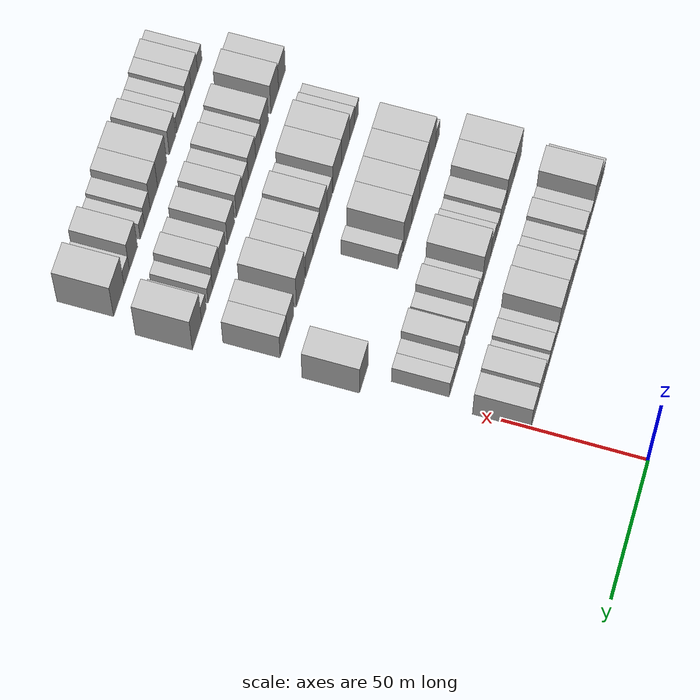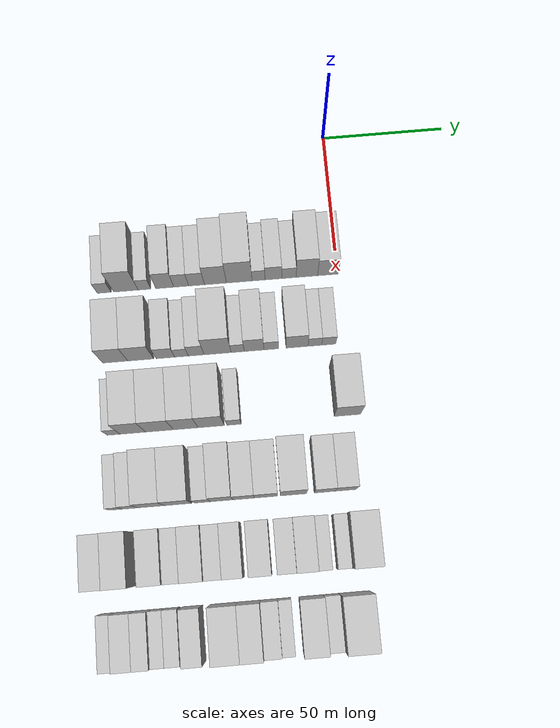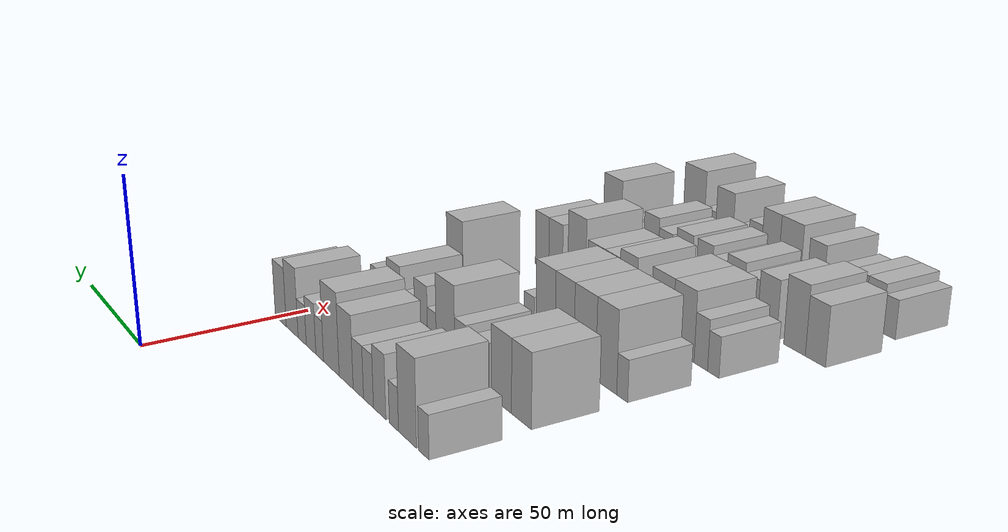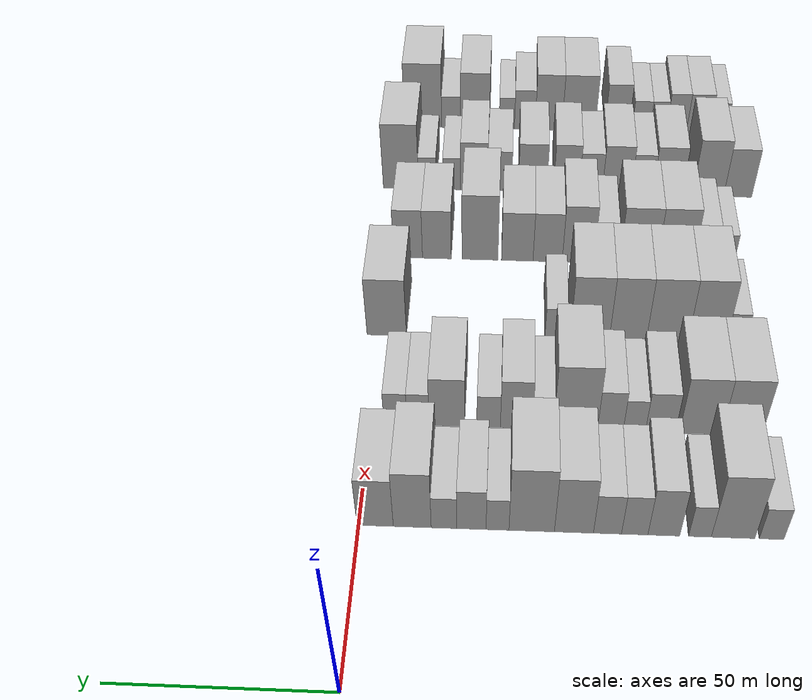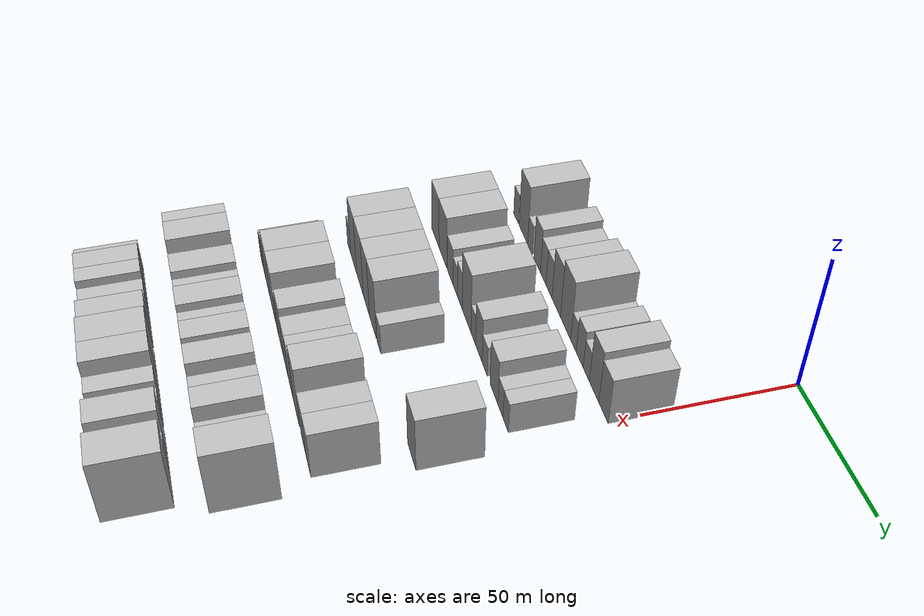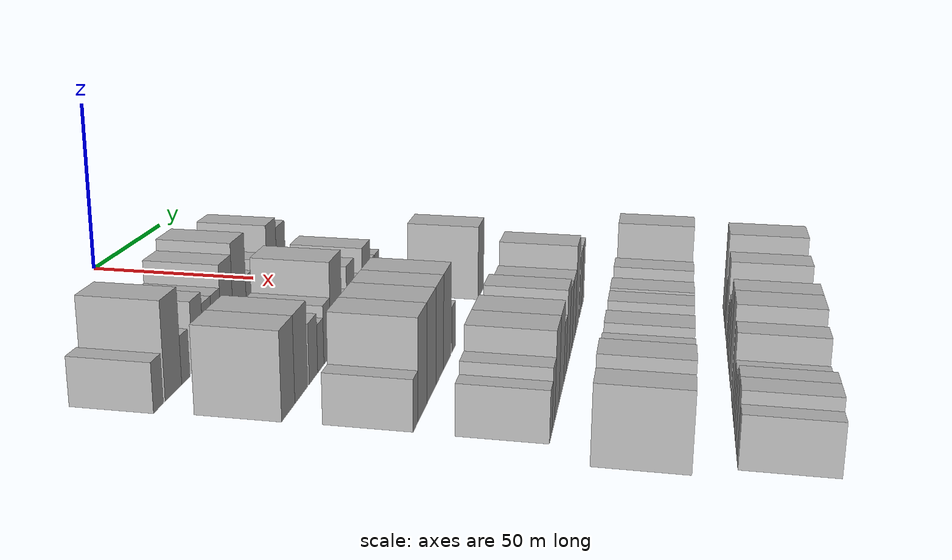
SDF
<sdf version="1.6">
 <world name="default">
  <model name="building_50">
   <static>1</static>
   <pose>50.0000 -94.3167 0 0.000000 0.000000 0.000000</pose>
   <link name="link">
    <pose>0 0 6.00 0 0 0</pose>
    <collision name="collision"><geometry><box><size>20.0000 5.5778 12.0000</size></box></geometry></collision>
    <visual name="visual">
     <cast_shadows>0</cast_shadows>
     <geometry><box><size>20.0000 5.5778 12.0000</size></box></geometry>
     <material>
      <script>
       <uri>model://HANNAS_wall/materials/scripts</uri>
       <uri>model://HANNAS_wall/materials/textures</uri>
       <name>vrc/HANNAS_wall</name>
      </script>
     </material>
    </visual>
   </link>
  </model>
  <model name="building_51">
   <static>1</static>
   <pose>50.0000 -85.5731 0 0.000000 0.000000 0.000000</pose>
   <link name="link">
    <pose>0 0 12.00 0 0 0</pose>
    <collision name="collision"><geometry><box><size>20.0000 9.9094 24.0000</size></box></geometry></collision>
    <visual name="visual">
     <cast_shadows>0</cast_shadows>
     <geometry><box><size>20.0000 9.9094 24.0000</size></box></geometry>
     <material>
      <script>
       <uri>model://HANNAS_wall/materials/scripts</uri>
       <uri>model://HANNAS_wall/materials/textures</uri>
       <name>vrc/HANNAS_wall</name>
      </script>
     </material>
    </visual>
   </link>
  </model>
  <model name="building_52">
   <static>1</static>
   <pose>50.0000 -78.0416 0 0.000000 0.000000 0.000000</pose>
   <link name="link">
    <pose>0 0 6.00 0 0 0</pose>
    <collision name="collision"><geometry><box><size>20.0000 5.1535 12.0000</size></box></geometry></collision>
    <visual name="visual">
     <cast_shadows>0</cast_shadows>
     <geometry><box><size>20.0000 5.1535 12.0000</size></box></geometry>
     <material>
      <script>
       <uri>model://HANNAS_wall/materials/scripts</uri>
       <uri>model://HANNAS_wall/materials/textures</uri>
       <name>vrc/HANNAS_wall</name>
      </script>
     </material>
    </visual>
   </link>
  </model>
  <model name="building_53">
   <static>1</static>
   <pose>50.0000 -69.8274 0 0.000000 0.000000 0.000000</pose>
   <link name="link">
    <pose>0 0 9.00 0 0 0</pose>
    <collision name="collision"><geometry><box><size>20.0000 7.2750 18.0000</size></box></geometry></collision>
    <visual name="visual">
     <cast_shadows>0</cast_shadows>
     <geometry><box><size>20.0000 7.2750 18.0000</size></box></geometry>
     <material>
      <script>
       <uri>model://HANNAS_wall/materials/scripts</uri>
       <uri>model://HANNAS_wall/materials/textures</uri>
       <name>vrc/HANNAS_wall</name>
      </script>
     </material>
    </visual>
   </link>
  </model>
  <model name="building_54">
   <static>1</static>
   <pose>50.0000 -63.1793 0 0.000000 0.000000 0.000000</pose>
   <link name="link">
    <pose>0 0 7.50 0 0 0</pose>
    <collision name="collision"><geometry><box><size>20.0000 6.0212 15.0000</size></box></geometry></collision>
    <visual name="visual">
     <cast_shadows>0</cast_shadows>
     <geometry><box><size>20.0000 6.0212 15.0000</size></box></geometry>
     <material>
      <script>
       <uri>model://HANNAS_wall/materials/scripts</uri>
       <uri>model://HANNAS_wall/materials/textures</uri>
       <name>vrc/HANNAS_wall</name>
      </script>
     </material>
    </visual>
   </link>
  </model>
  <model name="building_55">
   <static>1</static>
   <pose>50.0000 -56.9737 0 0.000000 0.000000 0.000000</pose>
   <link name="link">
    <pose>0 0 7.50 0 0 0</pose>
    <collision name="collision"><geometry><box><size>20.0000 6.3900 15.0000</size></box></geometry></collision>
    <visual name="visual">
     <cast_shadows>0</cast_shadows>
     <geometry><box><size>20.0000 6.3900 15.0000</size></box></geometry>
     <material>
      <script>
       <uri>model://HANNAS_wall/materials/scripts</uri>
       <uri>model://HANNAS_wall/materials/textures</uri>
       <name>vrc/HANNAS_wall</name>
      </script>
     </material>
    </visual>
   </link>
  </model>
  <model name="building_56">
   <static>1</static>
   <pose>50.0000 -49.3146 0 0.000000 0.000000 0.000000</pose>
   <link name="link">
    <pose>0 0 10.50 0 0 0</pose>
    <collision name="collision"><geometry><box><size>20.0000 8.9281 21.0000</size></box></geometry></collision>
    <visual name="visual">
     <cast_shadows>0</cast_shadows>
     <geometry><box><size>20.0000 8.9281 21.0000</size></box></geometry>
     <material>
      <script>
       <uri>model://HANNAS_wall/materials/scripts</uri>
       <uri>model://HANNAS_wall/materials/textures</uri>
       <name>vrc/HANNAS_wall</name>
      </script>
     </material>
    </visual>
   </link>
  </model>
  <model name="building_57">
   <static>1</static>
   <pose>50.0000 -39.6467 0 0.000000 0.000000 0.000000</pose>
   <link name="link">
    <pose>0 0 12.00 0 0 0</pose>
    <collision name="collision"><geometry><box><size>20.0000 10.4078 24.0000</size></box></geometry></collision>
    <visual name="visual">
     <cast_shadows>0</cast_shadows>
     <geometry><box><size>20.0000 10.4078 24.0000</size></box></geometry>
     <material>
      <script>
       <uri>model://HANNAS_wall/materials/scripts</uri>
       <uri>model://HANNAS_wall/materials/textures</uri>
       <name>vrc/HANNAS_wall</name>
      </script>
     </material>
    </visual>
   </link>
  </model>
  <model name="building_58">
   <static>1</static>
   <pose>50.0000 -31.8166 0 0.000000 0.000000 0.000000</pose>
   <link name="link">
    <pose>0 0 6.00 0 0 0</pose>
    <collision name="collision"><geometry><box><size>20.0000 5.2524 12.0000</size></box></geometry></collision>
    <visual name="visual">
     <cast_shadows>0</cast_shadows>
     <geometry><box><size>20.0000 5.2524 12.0000</size></box></geometry>
     <material>
      <script>
       <uri>model://HANNAS_wall/materials/scripts</uri>
       <uri>model://HANNAS_wall/materials/textures</uri>
       <name>vrc/HANNAS_wall</name>
      </script>
     </material>
    </visual>
   </link>
  </model>
  <model name="building_59">
   <static>1</static>
   <pose>50.0000 -25.8077 0 0.000000 0.000000 0.000000</pose>
   <link name="link">
    <pose>0 0 7.50 0 0 0</pose>
    <collision name="collision"><geometry><box><size>20.0000 6.7654 15.0000</size></box></geometry></collision>
    <visual name="visual">
     <cast_shadows>0</cast_shadows>
     <geometry><box><size>20.0000 6.7654 15.0000</size></box></geometry>
     <material>
      <script>
       <uri>model://HANNAS_wall/materials/scripts</uri>
       <uri>model://HANNAS_wall/materials/textures</uri>
       <name>vrc/HANNAS_wall</name>
      </script>
     </material>
    </visual>
   </link>
  </model>
  <model name="building_60">
   <static>1</static>
   <pose>50.0000 -19.5072 0 0.000000 0.000000 0.000000</pose>
   <link name="link">
    <pose>0 0 6.00 0 0 0</pose>
    <collision name="collision"><geometry><box><size>20.0000 5.8355 12.0000</size></box></geometry></collision>
    <visual name="visual">
     <cast_shadows>0</cast_shadows>
     <geometry><box><size>20.0000 5.8355 12.0000</size></box></geometry>
     <material>
      <script>
       <uri>model://HANNAS_wall/materials/scripts</uri>
       <uri>model://HANNAS_wall/materials/textures</uri>
       <name>vrc/HANNAS_wall</name>
      </script>
     </material>
    </visual>
   </link>
  </model>
  <model name="building_61">
   <static>1</static>
   <pose>50.0000 -12.2318 0 0.000000 0.000000 0.000000</pose>
   <link name="link">
    <pose>0 0 10.50 0 0 0</pose>
    <collision name="collision"><geometry><box><size>20.0000 8.7155 21.0000</size></box></geometry></collision>
    <visual name="visual">
     <cast_shadows>0</cast_shadows>
     <geometry><box><size>20.0000 8.7155 21.0000</size></box></geometry>
     <material>
      <script>
       <uri>model://HANNAS_wall/materials/scripts</uri>
       <uri>model://HANNAS_wall/materials/textures</uri>
       <name>vrc/HANNAS_wall</name>
      </script>
     </material>
    </visual>
   </link>
  </model>
  <model name="building_62">
   <static>1</static>
   <pose>50.0000 -3.6932 0 0.000000 0.000000 0.000000</pose>
   <link name="link">
    <pose>0 0 9.00 0 0 0</pose>
    <collision name="collision"><geometry><box><size>20.0000 8.3616 18.0000</size></box></geometry></collision>
    <visual name="visual">
     <cast_shadows>0</cast_shadows>
     <geometry><box><size>20.0000 8.3616 18.0000</size></box></geometry>
     <material>
      <script>
       <uri>model://HANNAS_wall/materials/scripts</uri>
       <uri>model://HANNAS_wall/materials/textures</uri>
       <name>vrc/HANNAS_wall</name>
      </script>
     </material>
    </visual>
   </link>
  </model>
  <model name="building_170">
   <static>1</static>
   <pose>79.0000 -91.0779 0 0.000000 0.000000 0.000000</pose>
   <link name="link">
    <pose>0 0 10.50 0 0 0</pose>
    <collision name="collision"><geometry><box><size>20.0000 9.8435 21.0000</size></box></geometry></collision>
    <visual name="visual">
     <cast_shadows>0</cast_shadows>
     <geometry><box><size>20.0000 9.8435 21.0000</size></box></geometry>
     <material>
      <script>
       <uri>model://HANNAS_wall/materials/scripts</uri>
       <uri>model://HANNAS_wall/materials/textures</uri>
       <name>vrc/HANNAS_wall</name>
      </script>
     </material>
    </visual>
   </link>
  </model>
  <model name="building_171">
   <static>1</static>
   <pose>79.0000 -81.0086 0 0.000000 0.000000 0.000000</pose>
   <link name="link">
    <pose>0 0 10.50 0 0 0</pose>
    <collision name="collision"><geometry><box><size>20.0000 10.2951 21.0000</size></box></geometry></collision>
    <visual name="visual">
     <cast_shadows>0</cast_shadows>
     <geometry><box><size>20.0000 10.2951 21.0000</size></box></geometry>
     <material>
      <script>
       <uri>model://HANNAS_wall/materials/scripts</uri>
       <uri>model://HANNAS_wall/materials/textures</uri>
       <name>vrc/HANNAS_wall</name>
      </script>
     </material>
    </visual>
   </link>
  </model>
  <model name="building_172">
   <static>1</static>
   <pose>79.0000 -71.1959 0 0.000000 0.000000 0.000000</pose>
   <link name="link">
    <pose>0 0 7.50 0 0 0</pose>
    <collision name="collision"><geometry><box><size>20.0000 7.3303 15.0000</size></box></geometry></collision>
    <visual name="visual">
     <cast_shadows>0</cast_shadows>
     <geometry><box><size>20.0000 7.3303 15.0000</size></box></geometry>
     <material>
      <script>
       <uri>model://HANNAS_wall/materials/scripts</uri>
       <uri>model://HANNAS_wall/materials/textures</uri>
       <name>vrc/HANNAS_wall</name>
      </script>
     </material>
    </visual>
   </link>
  </model>
  <model name="building_173">
   <static>1</static>
   <pose>79.0000 -64.8110 0 0.000000 0.000000 0.000000</pose>
   <link name="link">
    <pose>0 0 6.00 0 0 0</pose>
    <collision name="collision"><geometry><box><size>20.0000 5.4395 12.0000</size></box></geometry></collision>
    <visual name="visual">
     <cast_shadows>0</cast_shadows>
     <geometry><box><size>20.0000 5.4395 12.0000</size></box></geometry>
     <material>
      <script>
       <uri>model://HANNAS_wall/materials/scripts</uri>
       <uri>model://HANNAS_wall/materials/textures</uri>
       <name>vrc/HANNAS_wall</name>
      </script>
     </material>
    </visual>
   </link>
  </model>
  <model name="building_174">
   <static>1</static>
   <pose>79.0000 -58.9377 0 0.000000 0.000000 0.000000</pose>
   <link name="link">
    <pose>0 0 7.50 0 0 0</pose>
    <collision name="collision"><geometry><box><size>20.0000 6.3070 15.0000</size></box></geometry></collision>
    <visual name="visual">
     <cast_shadows>0</cast_shadows>
     <geometry><box><size>20.0000 6.3070 15.0000</size></box></geometry>
     <material>
      <script>
       <uri>model://HANNAS_wall/materials/scripts</uri>
       <uri>model://HANNAS_wall/materials/textures</uri>
       <name>vrc/HANNAS_wall</name>
      </script>
     </material>
    </visual>
   </link>
  </model>
  <model name="building_175">
   <static>1</static>
   <pose>79.0000 -50.4062 0 0.000000 0.000000 0.000000</pose>
   <link name="link">
    <pose>0 0 12.00 0 0 0</pose>
    <collision name="collision"><geometry><box><size>20.0000 10.7560 24.0000</size></box></geometry></collision>
    <visual name="visual">
     <cast_shadows>0</cast_shadows>
     <geometry><box><size>20.0000 10.7560 24.0000</size></box></geometry>
     <material>
      <script>
       <uri>model://HANNAS_wall/materials/scripts</uri>
       <uri>model://HANNAS_wall/materials/textures</uri>
       <name>vrc/HANNAS_wall</name>
      </script>
     </material>
    </visual>
   </link>
  </model>
  <model name="building_176">
   <static>1</static>
   <pose>79.0000 -42.4118 0 0.000000 0.000000 0.000000</pose>
   <link name="link">
    <pose>0 0 6.00 0 0 0</pose>
    <collision name="collision"><geometry><box><size>20.0000 5.2328 12.0000</size></box></geometry></collision>
    <visual name="visual">
     <cast_shadows>0</cast_shadows>
     <geometry><box><size>20.0000 5.2328 12.0000</size></box></geometry>
     <material>
      <script>
       <uri>model://HANNAS_wall/materials/scripts</uri>
       <uri>model://HANNAS_wall/materials/textures</uri>
       <name>vrc/HANNAS_wall</name>
      </script>
     </material>
    </visual>
   </link>
  </model>
  <model name="building_177">
   <static>1</static>
   <pose>79.0000 -35.8770 0 0.000000 0.000000 0.000000</pose>
   <link name="link">
    <pose>0 0 9.00 0 0 0</pose>
    <collision name="collision"><geometry><box><size>20.0000 7.8368 18.0000</size></box></geometry></collision>
    <visual name="visual">
     <cast_shadows>0</cast_shadows>
     <geometry><box><size>20.0000 7.8368 18.0000</size></box></geometry>
     <material>
      <script>
       <uri>model://HANNAS_wall/materials/scripts</uri>
       <uri>model://HANNAS_wall/materials/textures</uri>
       <name>vrc/HANNAS_wall</name>
      </script>
     </material>
    </visual>
   </link>
  </model>
  <model name="building_178">
   <static>1</static>
   <pose>79.0000 -29.0546 0 0.000000 0.000000 0.000000</pose>
   <link name="link">
    <pose>0 0 6.00 0 0 0</pose>
    <collision name="collision"><geometry><box><size>20.0000 5.8079 12.0000</size></box></geometry></collision>
    <visual name="visual">
     <cast_shadows>0</cast_shadows>
     <geometry><box><size>20.0000 5.8079 12.0000</size></box></geometry>
     <material>
      <script>
       <uri>model://HANNAS_wall/materials/scripts</uri>
       <uri>model://HANNAS_wall/materials/textures</uri>
       <name>vrc/HANNAS_wall</name>
      </script>
     </material>
    </visual>
   </link>
  </model>
  <model name="building_179">
   <static>1</static>
   <pose>79.0000 -18.7775 0 0.000000 0.000000 0.000000</pose>
   <link name="link">
    <pose>0 0 9.00 0 0 0</pose>
    <collision name="collision"><geometry><box><size>20.0000 8.7462 18.0000</size></box></geometry></collision>
    <visual name="visual">
     <cast_shadows>0</cast_shadows>
     <geometry><box><size>20.0000 8.7462 18.0000</size></box></geometry>
     <material>
      <script>
       <uri>model://HANNAS_wall/materials/scripts</uri>
       <uri>model://HANNAS_wall/materials/textures</uri>
       <name>vrc/HANNAS_wall</name>
      </script>
     </material>
    </visual>
   </link>
  </model>
  <model name="building_180">
   <static>1</static>
   <pose>79.0000 -11.6742 0 0.000000 0.000000 0.000000</pose>
   <link name="link">
    <pose>0 0 6.00 0 0 0</pose>
    <collision name="collision"><geometry><box><size>20.0000 5.4603 12.0000</size></box></geometry></collision>
    <visual name="visual">
     <cast_shadows>0</cast_shadows>
     <geometry><box><size>20.0000 5.4603 12.0000</size></box></geometry>
     <material>
      <script>
       <uri>model://HANNAS_wall/materials/scripts</uri>
       <uri>model://HANNAS_wall/materials/textures</uri>
       <name>vrc/HANNAS_wall</name>
      </script>
     </material>
    </visual>
   </link>
  </model>
  <model name="building_181">
   <static>1</static>
   <pose>79.0000 -6.1070 0 0.000000 0.000000 0.000000</pose>
   <link name="link">
    <pose>0 0 6.00 0 0 0</pose>
    <collision name="collision"><geometry><box><size>20.0000 5.6741 12.0000</size></box></geometry></collision>
    <visual name="visual">
     <cast_shadows>0</cast_shadows>
     <geometry><box><size>20.0000 5.6741 12.0000</size></box></geometry>
     <material>
      <script>
       <uri>model://HANNAS_wall/materials/scripts</uri>
       <uri>model://HANNAS_wall/materials/textures</uri>
       <name>vrc/HANNAS_wall</name>
      </script>
     </material>
    </visual>
   </link>
  </model>
  <model name="building_285">
   <static>1</static>
   <pose>108.0000 -93.0179 0 0.000000 0.000000 0.000000</pose>
   <link name="link">
    <pose>0 0 6.00 0 0 0</pose>
    <collision name="collision"><geometry><box><size>20.0000 5.0645 12.0000</size></box></geometry></collision>
    <visual name="visual">
     <cast_shadows>0</cast_shadows>
     <geometry><box><size>20.0000 5.0645 12.0000</size></box></geometry>
     <material>
      <script>
       <uri>model://HANNAS_wall/materials/scripts</uri>
       <uri>model://HANNAS_wall/materials/textures</uri>
       <name>vrc/HANNAS_wall</name>
      </script>
     </material>
    </visual>
   </link>
  </model>
  <model name="building_286">
   <static>1</static>
   <pose>108.0000 -85.4905 0 0.000000 0.000000 0.000000</pose>
   <link name="link">
    <pose>0 0 12.00 0 0 0</pose>
    <collision name="collision"><geometry><box><size>20.0000 9.9904 24.0000</size></box></geometry></collision>
    <visual name="visual">
     <cast_shadows>0</cast_shadows>
     <geometry><box><size>20.0000 9.9904 24.0000</size></box></geometry>
     <material>
      <script>
       <uri>model://HANNAS_wall/materials/scripts</uri>
       <uri>model://HANNAS_wall/materials/textures</uri>
       <name>vrc/HANNAS_wall</name>
      </script>
     </material>
    </visual>
   </link>
  </model>
  <model name="building_287">
   <static>1</static>
   <pose>108.0000 -75.0640 0 0.000000 0.000000 0.000000</pose>
   <link name="link">
    <pose>0 0 12.00 0 0 0</pose>
    <collision name="collision"><geometry><box><size>20.0000 10.8627 24.0000</size></box></geometry></collision>
    <visual name="visual">
     <cast_shadows>0</cast_shadows>
     <geometry><box><size>20.0000 10.8627 24.0000</size></box></geometry>
     <material>
      <script>
       <uri>model://HANNAS_wall/materials/scripts</uri>
       <uri>model://HANNAS_wall/materials/textures</uri>
       <name>vrc/HANNAS_wall</name>
      </script>
     </material>
    </visual>
   </link>
  </model>
  <model name="building_288">
   <static>1</static>
   <pose>108.0000 -64.8012 0 0.000000 0.000000 0.000000</pose>
   <link name="link">
    <pose>0 0 12.00 0 0 0</pose>
    <collision name="collision"><geometry><box><size>20.0000 9.6628 24.0000</size></box></geometry></collision>
    <visual name="visual">
     <cast_shadows>0</cast_shadows>
     <geometry><box><size>20.0000 9.6628 24.0000</size></box></geometry>
     <material>
      <script>
       <uri>model://HANNAS_wall/materials/scripts</uri>
       <uri>model://HANNAS_wall/materials/textures</uri>
       <name>vrc/HANNAS_wall</name>
      </script>
     </material>
    </visual>
   </link>
  </model>
  <model name="building_289">
   <static>1</static>
   <pose>108.0000 -54.8423 0 0.000000 0.000000 0.000000</pose>
   <link name="link">
    <pose>0 0 12.00 0 0 0</pose>
    <collision name="collision"><geometry><box><size>20.0000 10.2550 24.0000</size></box></geometry></collision>
    <visual name="visual">
     <cast_shadows>0</cast_shadows>
     <geometry><box><size>20.0000 10.2550 24.0000</size></box></geometry>
     <material>
      <script>
       <uri>model://HANNAS_wall/materials/scripts</uri>
       <uri>model://HANNAS_wall/materials/textures</uri>
       <name>vrc/HANNAS_wall</name>
      </script>
     </material>
    </visual>
   </link>
  </model>
  <model name="building_290">
   <static>1</static>
   <pose>108.0000 -45.9170 0 0.000000 0.000000 0.000000</pose>
   <link name="link">
    <pose>0 0 6.00 0 0 0</pose>
    <collision name="collision"><geometry><box><size>20.0000 5.5956 12.0000</size></box></geometry></collision>
    <visual name="visual">
     <cast_shadows>0</cast_shadows>
     <geometry><box><size>20.0000 5.5956 12.0000</size></box></geometry>
     <material>
      <script>
       <uri>model://HANNAS_wall/materials/scripts</uri>
       <uri>model://HANNAS_wall/materials/textures</uri>
       <name>vrc/HANNAS_wall</name>
      </script>
     </material>
    </visual>
   </link>
  </model>
  <model name="building_291">
   <static>1</static>
   <pose>108.0000 -1.5091 0 0.000000 0.000000 0.000000</pose>
   <link name="link">
    <pose>0 0 10.50 0 0 0</pose>
    <collision name="collision"><geometry><box><size>20.0000 10.4067 21.0000</size></box></geometry></collision>
    <visual name="visual">
     <cast_shadows>0</cast_shadows>
     <geometry><box><size>20.0000 10.4067 21.0000</size></box></geometry>
     <material>
      <script>
       <uri>model://HANNAS_wall/materials/scripts</uri>
       <uri>model://HANNAS_wall/materials/textures</uri>
       <name>vrc/HANNAS_wall</name>
      </script>
     </material>
    </visual>
   </link>
  </model>
  <model name="building_395">
   <static>1</static>
   <pose>137.0000 -93.3027 0 0.000000 0.000000 0.000000</pose>
   <link name="link">
    <pose>0 0 6.00 0 0 0</pose>
    <collision name="collision"><geometry><box><size>20.0000 5.0446 12.0000</size></box></geometry></collision>
    <visual name="visual">
     <cast_shadows>0</cast_shadows>
     <geometry><box><size>20.0000 5.0446 12.0000</size></box></geometry>
     <material>
      <script>
       <uri>model://HANNAS_wall/materials/scripts</uri>
       <uri>model://HANNAS_wall/materials/textures</uri>
       <name>vrc/HANNAS_wall</name>
      </script>
     </material>
    </visual>
   </link>
  </model>
  <model name="building_396">
   <static>1</static>
   <pose>137.0000 -87.7525 0 0.000000 0.000000 0.000000</pose>
   <link name="link">
    <pose>0 0 7.50 0 0 0</pose>
    <collision name="collision"><geometry><box><size>20.0000 6.0558 15.0000</size></box></geometry></collision>
    <visual name="visual">
     <cast_shadows>0</cast_shadows>
     <geometry><box><size>20.0000 6.0558 15.0000</size></box></geometry>
     <material>
      <script>
       <uri>model://HANNAS_wall/materials/scripts</uri>
       <uri>model://HANNAS_wall/materials/textures</uri>
       <name>vrc/HANNAS_wall</name>
      </script>
     </material>
    </visual>
   </link>
  </model>
  <model name="building_397">
   <static>1</static>
   <pose>137.0000 -79.6932 0 0.000000 0.000000 0.000000</pose>
   <link name="link">
    <pose>0 0 10.50 0 0 0</pose>
    <collision name="collision"><geometry><box><size>20.0000 10.0628 21.0000</size></box></geometry></collision>
    <visual name="visual">
     <cast_shadows>0</cast_shadows>
     <geometry><box><size>20.0000 10.0628 21.0000</size></box></geometry>
     <material>
      <script>
       <uri>model://HANNAS_wall/materials/scripts</uri>
       <uri>model://HANNAS_wall/materials/textures</uri>
       <name>vrc/HANNAS_wall</name>
      </script>
     </material>
    </visual>
   </link>
  </model>
  <model name="building_398">
   <static>1</static>
   <pose>137.0000 -69.4129 0 0.000000 0.000000 0.000000</pose>
   <link name="link">
    <pose>0 0 10.50 0 0 0</pose>
    <collision name="collision"><geometry><box><size>20.0000 10.4978 21.0000</size></box></geometry></collision>
    <visual name="visual">
     <cast_shadows>0</cast_shadows>
     <geometry><box><size>20.0000 10.4978 21.0000</size></box></geometry>
     <material>
      <script>
       <uri>model://HANNAS_wall/materials/scripts</uri>
       <uri>model://HANNAS_wall/materials/textures</uri>
       <name>vrc/HANNAS_wall</name>
      </script>
     </material>
    </visual>
   </link>
  </model>
  <model name="building_399">
   <static>1</static>
   <pose>137.0000 -60.0871 0 0.000000 0.000000 0.000000</pose>
   <link name="link">
    <pose>0 0 7.50 0 0 0</pose>
    <collision name="collision"><geometry><box><size>20.0000 6.1536 15.0000</size></box></geometry></collision>
    <visual name="visual">
     <cast_shadows>0</cast_shadows>
     <geometry><box><size>20.0000 6.1536 15.0000</size></box></geometry>
     <material>
      <script>
       <uri>model://HANNAS_wall/materials/scripts</uri>
       <uri>model://HANNAS_wall/materials/textures</uri>
       <name>vrc/HANNAS_wall</name>
      </script>
     </material>
    </visual>
   </link>
  </model>
  <model name="building_400">
   <static>1</static>
   <pose>137.0000 -52.6197 0 0.000000 0.000000 0.000000</pose>
   <link name="link">
    <pose>0 0 10.50 0 0 0</pose>
    <collision name="collision"><geometry><box><size>20.0000 8.7813 21.0000</size></box></geometry></collision>
    <visual name="visual">
     <cast_shadows>0</cast_shadows>
     <geometry><box><size>20.0000 8.7813 21.0000</size></box></geometry>
     <material>
      <script>
       <uri>model://HANNAS_wall/materials/scripts</uri>
       <uri>model://HANNAS_wall/materials/textures</uri>
       <name>vrc/HANNAS_wall</name>
      </script>
     </material>
    </visual>
   </link>
  </model>
  <model name="building_401">
   <static>1</static>
   <pose>137.0000 -44.1508 0 0.000000 0.000000 0.000000</pose>
   <link name="link">
    <pose>0 0 9.00 0 0 0</pose>
    <collision name="collision"><geometry><box><size>20.0000 8.1564 18.0000</size></box></geometry></collision>
    <visual name="visual">
     <cast_shadows>0</cast_shadows>
     <geometry><box><size>20.0000 8.1564 18.0000</size></box></geometry>
     <material>
      <script>
       <uri>model://HANNAS_wall/materials/scripts</uri>
       <uri>model://HANNAS_wall/materials/textures</uri>
       <name>vrc/HANNAS_wall</name>
      </script>
     </material>
    </visual>
   </link>
  </model>
  <model name="building_402">
   <static>1</static>
   <pose>137.0000 -35.6690 0 0.000000 0.000000 0.000000</pose>
   <link name="link">
    <pose>0 0 9.00 0 0 0</pose>
    <collision name="collision"><geometry><box><size>20.0000 8.8073 18.0000</size></box></geometry></collision>
    <visual name="visual">
     <cast_shadows>0</cast_shadows>
     <geometry><box><size>20.0000 8.8073 18.0000</size></box></geometry>
     <material>
      <script>
       <uri>model://HANNAS_wall/materials/scripts</uri>
       <uri>model://HANNAS_wall/materials/textures</uri>
       <name>vrc/HANNAS_wall</name>
      </script>
     </material>
    </visual>
   </link>
  </model>
  <model name="building_403">
   <static>1</static>
   <pose>137.0000 -25.2246 0 0.000000 0.000000 0.000000</pose>
   <link name="link">
    <pose>0 0 12.00 0 0 0</pose>
    <collision name="collision"><geometry><box><size>20.0000 10.0814 24.0000</size></box></geometry></collision>
    <visual name="visual">
     <cast_shadows>0</cast_shadows>
     <geometry><box><size>20.0000 10.0814 24.0000</size></box></geometry>
     <material>
      <script>
       <uri>model://HANNAS_wall/materials/scripts</uri>
       <uri>model://HANNAS_wall/materials/textures</uri>
       <name>vrc/HANNAS_wall</name>
      </script>
     </material>
    </visual>
   </link>
  </model>
  <model name="building_404">
   <static>1</static>
   <pose>137.0000 -13.1492 0 0.000000 0.000000 0.000000</pose>
   <link name="link">
    <pose>0 0 9.00 0 0 0</pose>
    <collision name="collision"><geometry><box><size>20.0000 8.0694 18.0000</size></box></geometry></collision>
    <visual name="visual">
     <cast_shadows>0</cast_shadows>
     <geometry><box><size>20.0000 8.0694 18.0000</size></box></geometry>
     <material>
      <script>
       <uri>model://HANNAS_wall/materials/scripts</uri>
       <uri>model://HANNAS_wall/materials/textures</uri>
       <name>vrc/HANNAS_wall</name>
      </script>
     </material>
    </visual>
   </link>
  </model>
  <model name="building_405">
   <static>1</static>
   <pose>137.0000 -5.0916 0 0.000000 0.000000 0.000000</pose>
   <link name="link">
    <pose>0 0 9.00 0 0 0</pose>
    <collision name="collision"><geometry><box><size>20.0000 8.0459 18.0000</size></box></geometry></collision>
    <visual name="visual">
     <cast_shadows>0</cast_shadows>
     <geometry><box><size>20.0000 8.0459 18.0000</size></box></geometry>
     <material>
      <script>
       <uri>model://HANNAS_wall/materials/scripts</uri>
       <uri>model://HANNAS_wall/materials/textures</uri>
       <name>vrc/HANNAS_wall</name>
      </script>
     </material>
    </visual>
   </link>
  </model>
  <model name="building_504">
   <static>1</static>
   <pose>166.0000 -100.5169 0 0.000000 0.000000 0.000000</pose>
   <link name="link">
    <pose>0 0 9.00 0 0 0</pose>
    <collision name="collision"><geometry><box><size>20.0000 8.2686 18.0000</size></box></geometry></collision>
    <visual name="visual">
     <cast_shadows>0</cast_shadows>
     <geometry><box><size>20.0000 8.2686 18.0000</size></box></geometry>
     <material>
      <script>
       <uri>model://HANNAS_wall/materials/scripts</uri>
       <uri>model://HANNAS_wall/materials/textures</uri>
       <name>vrc/HANNAS_wall</name>
      </script>
     </material>
    </visual>
   </link>
  </model>
  <model name="building_505">
   <static>1</static>
   <pose>166.0000 -91.8020 0 0.000000 0.000000 0.000000</pose>
   <link name="link">
    <pose>0 0 10.50 0 0 0</pose>
    <collision name="collision"><geometry><box><size>20.0000 9.1612 21.0000</size></box></geometry></collision>
    <visual name="visual">
     <cast_shadows>0</cast_shadows>
     <geometry><box><size>20.0000 9.1612 21.0000</size></box></geometry>
     <material>
      <script>
       <uri>model://HANNAS_wall/materials/scripts</uri>
       <uri>model://HANNAS_wall/materials/textures</uri>
       <name>vrc/HANNAS_wall</name>
      </script>
     </material>
    </visual>
   </link>
  </model>
  <model name="building_506">
   <static>1</static>
   <pose>166.0000 -79.8708 0 0.000000 0.000000 0.000000</pose>
   <link name="link">
    <pose>0 0 9.00 0 0 0</pose>
    <collision name="collision"><geometry><box><size>20.0000 8.7012 18.0000</size></box></geometry></collision>
    <visual name="visual">
     <cast_shadows>0</cast_shadows>
     <geometry><box><size>20.0000 8.7012 18.0000</size></box></geometry>
     <material>
      <script>
       <uri>model://HANNAS_wall/materials/scripts</uri>
       <uri>model://HANNAS_wall/materials/textures</uri>
       <name>vrc/HANNAS_wall</name>
      </script>
     </material>
    </visual>
   </link>
  </model>
  <model name="building_507">
   <static>1</static>
   <pose>166.0000 -72.2973 0 0.000000 0.000000 0.000000</pose>
   <link name="link">
    <pose>0 0 7.50 0 0 0</pose>
    <collision name="collision"><geometry><box><size>20.0000 6.4458 15.0000</size></box></geometry></collision>
    <visual name="visual">
     <cast_shadows>0</cast_shadows>
     <geometry><box><size>20.0000 6.4458 15.0000</size></box></geometry>
     <material>
      <script>
       <uri>model://HANNAS_wall/materials/scripts</uri>
       <uri>model://HANNAS_wall/materials/textures</uri>
       <name>vrc/HANNAS_wall</name>
      </script>
     </material>
    </visual>
   </link>
  </model>
  <model name="building_508">
   <static>1</static>
   <pose>166.0000 -64.7976 0 0.000000 0.000000 0.000000</pose>
   <link name="link">
    <pose>0 0 9.00 0 0 0</pose>
    <collision name="collision"><geometry><box><size>20.0000 8.5536 18.0000</size></box></geometry></collision>
    <visual name="visual">
     <cast_shadows>0</cast_shadows>
     <geometry><box><size>20.0000 8.5536 18.0000</size></box></geometry>
     <material>
      <script>
       <uri>model://HANNAS_wall/materials/scripts</uri>
       <uri>model://HANNAS_wall/materials/textures</uri>
       <name>vrc/HANNAS_wall</name>
      </script>
     </material>
    </visual>
   </link>
  </model>
  <model name="building_509">
   <static>1</static>
   <pose>166.0000 -57.1460 0 0.000000 0.000000 0.000000</pose>
   <link name="link">
    <pose>0 0 7.50 0 0 0</pose>
    <collision name="collision"><geometry><box><size>20.0000 6.7496 15.0000</size></box></geometry></collision>
    <visual name="visual">
     <cast_shadows>0</cast_shadows>
     <geometry><box><size>20.0000 6.7496 15.0000</size></box></geometry>
     <material>
      <script>
       <uri>model://HANNAS_wall/materials/scripts</uri>
       <uri>model://HANNAS_wall/materials/textures</uri>
       <name>vrc/HANNAS_wall</name>
      </script>
     </material>
    </visual>
   </link>
  </model>
  <model name="building_510">
   <static>1</static>
   <pose>166.0000 -49.9615 0 0.000000 0.000000 0.000000</pose>
   <link name="link">
    <pose>0 0 9.00 0 0 0</pose>
    <collision name="collision"><geometry><box><size>20.0000 7.6192 18.0000</size></box></geometry></collision>
    <visual name="visual">
     <cast_shadows>0</cast_shadows>
     <geometry><box><size>20.0000 7.6192 18.0000</size></box></geometry>
     <material>
      <script>
       <uri>model://HANNAS_wall/materials/scripts</uri>
       <uri>model://HANNAS_wall/materials/textures</uri>
       <name>vrc/HANNAS_wall</name>
      </script>
     </material>
    </visual>
   </link>
  </model>
  <model name="building_511">
   <static>1</static>
   <pose>166.0000 -39.9443 0 0.000000 0.000000 0.000000</pose>
   <link name="link">
    <pose>0 0 9.00 0 0 0</pose>
    <collision name="collision"><geometry><box><size>20.0000 8.4152 18.0000</size></box></geometry></collision>
    <visual name="visual">
     <cast_shadows>0</cast_shadows>
     <geometry><box><size>20.0000 8.4152 18.0000</size></box></geometry>
     <material>
      <script>
       <uri>model://HANNAS_wall/materials/scripts</uri>
       <uri>model://HANNAS_wall/materials/textures</uri>
       <name>vrc/HANNAS_wall</name>
      </script>
     </material>
    </visual>
   </link>
  </model>
  <model name="building_512">
   <static>1</static>
   <pose>166.0000 -30.1804 0 0.000000 0.000000 0.000000</pose>
   <link name="link">
    <pose>0 0 7.50 0 0 0</pose>
    <collision name="collision"><geometry><box><size>20.0000 7.1128 15.0000</size></box></geometry></collision>
    <visual name="visual">
     <cast_shadows>0</cast_shadows>
     <geometry><box><size>20.0000 7.1128 15.0000</size></box></geometry>
     <material>
      <script>
       <uri>model://HANNAS_wall/materials/scripts</uri>
       <uri>model://HANNAS_wall/materials/textures</uri>
       <name>vrc/HANNAS_wall</name>
      </script>
     </material>
    </visual>
   </link>
  </model>
  <model name="building_513">
   <static>1</static>
   <pose>166.0000 -22.6128 0 0.000000 0.000000 0.000000</pose>
   <link name="link">
    <pose>0 0 9.00 0 0 0</pose>
    <collision name="collision"><geometry><box><size>20.0000 8.0224 18.0000</size></box></geometry></collision>
    <visual name="visual">
     <cast_shadows>0</cast_shadows>
     <geometry><box><size>20.0000 8.0224 18.0000</size></box></geometry>
     <material>
      <script>
       <uri>model://HANNAS_wall/materials/scripts</uri>
       <uri>model://HANNAS_wall/materials/textures</uri>
       <name>vrc/HANNAS_wall</name>
      </script>
     </material>
    </visual>
   </link>
  </model>
  <model name="building_514">
   <static>1</static>
   <pose>166.0000 -15.9864 0 0.000000 0.000000 0.000000</pose>
   <link name="link">
    <pose>0 0 6.00 0 0 0</pose>
    <collision name="collision"><geometry><box><size>20.0000 5.2303 12.0000</size></box></geometry></collision>
    <visual name="visual">
     <cast_shadows>0</cast_shadows>
     <geometry><box><size>20.0000 5.2303 12.0000</size></box></geometry>
     <material>
      <script>
       <uri>model://HANNAS_wall/materials/scripts</uri>
       <uri>model://HANNAS_wall/materials/textures</uri>
       <name>vrc/HANNAS_wall</name>
      </script>
     </material>
    </visual>
   </link>
  </model>
  <model name="building_515">
   <static>1</static>
   <pose>166.0000 -8.7450 0 0.000000 0.000000 0.000000</pose>
   <link name="link">
    <pose>0 0 6.00 0 0 0</pose>
    <collision name="collision"><geometry><box><size>20.0000 5.2526 12.0000</size></box></geometry></collision>
    <visual name="visual">
     <cast_shadows>0</cast_shadows>
     <geometry><box><size>20.0000 5.2526 12.0000</size></box></geometry>
     <material>
      <script>
       <uri>model://HANNAS_wall/materials/scripts</uri>
       <uri>model://HANNAS_wall/materials/textures</uri>
       <name>vrc/HANNAS_wall</name>
      </script>
     </material>
    </visual>
   </link>
  </model>
  <model name="building_516">
   <static>1</static>
   <pose>166.0000 -0.8841 0 0.000000 0.000000 0.000000</pose>
   <link name="link">
    <pose>0 0 12.00 0 0 0</pose>
    <collision name="collision"><geometry><box><size>20.0000 10.4691 24.0000</size></box></geometry></collision>
    <visual name="visual">
     <cast_shadows>0</cast_shadows>
     <geometry><box><size>20.0000 10.4691 24.0000</size></box></geometry>
     <material>
      <script>
       <uri>model://HANNAS_wall/materials/scripts</uri>
       <uri>model://HANNAS_wall/materials/textures</uri>
       <name>vrc/HANNAS_wall</name>
      </script>
     </material>
    </visual>
   </link>
  </model>
  <model name="building_622">
   <static>1</static>
   <pose>195.0000 -97.9174 0 0.000000 0.000000 0.000000</pose>
   <link name="link">
    <pose>0 0 6.00 0 0 0</pose>
    <collision name="collision"><geometry><box><size>20.0000 5.1894 12.0000</size></box></geometry></collision>
    <visual name="visual">
     <cast_shadows>0</cast_shadows>
     <geometry><box><size>20.0000 5.1894 12.0000</size></box></geometry>
     <material>
      <script>
       <uri>model://HANNAS_wall/materials/scripts</uri>
       <uri>model://HANNAS_wall/materials/textures</uri>
       <name>vrc/HANNAS_wall</name>
      </script>
     </material>
    </visual>
   </link>
  </model>
  <model name="building_623">
   <static>1</static>
   <pose>195.0000 -91.6610 0 0.000000 0.000000 0.000000</pose>
   <link name="link">
    <pose>0 0 7.50 0 0 0</pose>
    <collision name="collision"><geometry><box><size>20.0000 7.3234 15.0000</size></box></geometry></collision>
    <visual name="visual">
     <cast_shadows>0</cast_shadows>
     <geometry><box><size>20.0000 7.3234 15.0000</size></box></geometry>
     <material>
      <script>
       <uri>model://HANNAS_wall/materials/scripts</uri>
       <uri>model://HANNAS_wall/materials/textures</uri>
       <name>vrc/HANNAS_wall</name>
      </script>
     </material>
    </visual>
   </link>
  </model>
  <model name="building_624">
   <static>1</static>
   <pose>195.0000 -84.8925 0 0.000000 0.000000 0.000000</pose>
   <link name="link">
    <pose>0 0 7.50 0 0 0</pose>
    <collision name="collision"><geometry><box><size>20.0000 6.2136 15.0000</size></box></geometry></collision>
    <visual name="visual">
     <cast_shadows>0</cast_shadows>
     <geometry><box><size>20.0000 6.2136 15.0000</size></box></geometry>
     <material>
      <script>
       <uri>model://HANNAS_wall/materials/scripts</uri>
       <uri>model://HANNAS_wall/materials/textures</uri>
       <name>vrc/HANNAS_wall</name>
      </script>
     </material>
    </visual>
   </link>
  </model>
  <model name="building_625">
   <static>1</static>
   <pose>195.0000 -79.2257 0 0.000000 0.000000 0.000000</pose>
   <link name="link">
    <pose>0 0 6.00 0 0 0</pose>
    <collision name="collision"><geometry><box><size>20.0000 5.1200 12.0000</size></box></geometry></collision>
    <visual name="visual">
     <cast_shadows>0</cast_shadows>
     <geometry><box><size>20.0000 5.1200 12.0000</size></box></geometry>
     <material>
      <script>
       <uri>model://HANNAS_wall/materials/scripts</uri>
       <uri>model://HANNAS_wall/materials/textures</uri>
       <name>vrc/HANNAS_wall</name>
      </script>
     </material>
    </visual>
   </link>
  </model>
  <model name="building_626">
   <static>1</static>
   <pose>195.0000 -73.8473 0 0.000000 0.000000 0.000000</pose>
   <link name="link">
    <pose>0 0 6.00 0 0 0</pose>
    <collision name="collision"><geometry><box><size>20.0000 5.6369 12.0000</size></box></geometry></collision>
    <visual name="visual">
     <cast_shadows>0</cast_shadows>
     <geometry><box><size>20.0000 5.6369 12.0000</size></box></geometry>
     <material>
      <script>
       <uri>model://HANNAS_wall/materials/scripts</uri>
       <uri>model://HANNAS_wall/materials/textures</uri>
       <name>vrc/HANNAS_wall</name>
      </script>
     </material>
    </visual>
   </link>
  </model>
  <model name="building_627">
   <static>1</static>
   <pose>195.0000 -66.2967 0 0.000000 0.000000 0.000000</pose>
   <link name="link">
    <pose>0 0 9.00 0 0 0</pose>
    <collision name="collision"><geometry><box><size>20.0000 7.4642 18.0000</size></box></geometry></collision>
    <visual name="visual">
     <cast_shadows>0</cast_shadows>
     <geometry><box><size>20.0000 7.4642 18.0000</size></box></geometry>
     <material>
      <script>
       <uri>model://HANNAS_wall/materials/scripts</uri>
       <uri>model://HANNAS_wall/materials/textures</uri>
       <name>vrc/HANNAS_wall</name>
      </script>
     </material>
    </visual>
   </link>
  </model>
  <model name="building_628">
   <static>1</static>
   <pose>195.0000 -54.3887 0 0.000000 0.000000 0.000000</pose>
   <link name="link">
    <pose>0 0 10.50 0 0 0</pose>
    <collision name="collision"><geometry><box><size>20.0000 10.3519 21.0000</size></box></geometry></collision>
    <visual name="visual">
     <cast_shadows>0</cast_shadows>
     <geometry><box><size>20.0000 10.3519 21.0000</size></box></geometry>
     <material>
      <script>
       <uri>model://HANNAS_wall/materials/scripts</uri>
       <uri>model://HANNAS_wall/materials/textures</uri>
       <name>vrc/HANNAS_wall</name>
      </script>
     </material>
    </visual>
   </link>
  </model>
  <model name="building_629">
   <static>1</static>
   <pose>195.0000 -44.9979 0 0.000000 0.000000 0.000000</pose>
   <link name="link">
    <pose>0 0 10.50 0 0 0</pose>
    <collision name="collision"><geometry><box><size>20.0000 8.4296 21.0000</size></box></geometry></collision>
    <visual name="visual">
     <cast_shadows>0</cast_shadows>
     <geometry><box><size>20.0000 8.4296 21.0000</size></box></geometry>
     <material>
      <script>
       <uri>model://HANNAS_wall/materials/scripts</uri>
       <uri>model://HANNAS_wall/materials/textures</uri>
       <name>vrc/HANNAS_wall</name>
      </script>
     </material>
    </visual>
   </link>
  </model>
  <model name="building_630">
   <static>1</static>
   <pose>195.0000 -37.5457 0 0.000000 0.000000 0.000000</pose>
   <link name="link">
    <pose>0 0 7.50 0 0 0</pose>
    <collision name="collision"><geometry><box><size>20.0000 6.4746 15.0000</size></box></geometry></collision>
    <visual name="visual">
     <cast_shadows>0</cast_shadows>
     <geometry><box><size>20.0000 6.4746 15.0000</size></box></geometry>
     <material>
      <script>
       <uri>model://HANNAS_wall/materials/scripts</uri>
       <uri>model://HANNAS_wall/materials/textures</uri>
       <name>vrc/HANNAS_wall</name>
      </script>
     </material>
    </visual>
   </link>
  </model>
  <model name="building_631">
   <static>1</static>
   <pose>195.0000 -31.9081 0 0.000000 0.000000 0.000000</pose>
   <link name="link">
    <pose>0 0 6.00 0 0 0</pose>
    <collision name="collision"><geometry><box><size>20.0000 4.8007 12.0000</size></box></geometry></collision>
    <visual name="visual">
     <cast_shadows>0</cast_shadows>
     <geometry><box><size>20.0000 4.8007 12.0000</size></box></geometry>
     <material>
      <script>
       <uri>model://HANNAS_wall/materials/scripts</uri>
       <uri>model://HANNAS_wall/materials/textures</uri>
       <name>vrc/HANNAS_wall</name>
      </script>
     </material>
    </visual>
   </link>
  </model>
  <model name="building_632">
   <static>1</static>
   <pose>195.0000 -21.9770 0 0.000000 0.000000 0.000000</pose>
   <link name="link">
    <pose>0 0 10.50 0 0 0</pose>
    <collision name="collision"><geometry><box><size>20.0000 9.0614 21.0000</size></box></geometry></collision>
    <visual name="visual">
     <cast_shadows>0</cast_shadows>
     <geometry><box><size>20.0000 9.0614 21.0000</size></box></geometry>
     <material>
      <script>
       <uri>model://HANNAS_wall/materials/scripts</uri>
       <uri>model://HANNAS_wall/materials/textures</uri>
       <name>vrc/HANNAS_wall</name>
      </script>
     </material>
    </visual>
   </link>
  </model>
  <model name="building_633">
   <static>1</static>
   <pose>195.0000 -14.4681 0 0.000000 0.000000 0.000000</pose>
   <link name="link">
    <pose>0 0 6.00 0 0 0</pose>
    <collision name="collision"><geometry><box><size>20.0000 5.9565 12.0000</size></box></geometry></collision>
    <visual name="visual">
     <cast_shadows>0</cast_shadows>
     <geometry><box><size>20.0000 5.9565 12.0000</size></box></geometry>
     <material>
      <script>
       <uri>model://HANNAS_wall/materials/scripts</uri>
       <uri>model://HANNAS_wall/materials/textures</uri>
       <name>vrc/HANNAS_wall</name>
      </script>
     </material>
    </visual>
   </link>
  </model>
  <model name="building_634">
   <static>1</static>
   <pose>195.0000 -5.6870 0 0.000000 0.000000 0.000000</pose>
   <link name="link">
    <pose>0 0 12.00 0 0 0</pose>
    <collision name="collision"><geometry><box><size>20.0000 11.6056 24.0000</size></box></geometry></collision>
    <visual name="visual">
     <cast_shadows>0</cast_shadows>
     <geometry><box><size>20.0000 11.6056 24.0000</size></box></geometry>
     <material>
      <script>
       <uri>model://HANNAS_wall/materials/scripts</uri>
       <uri>model://HANNAS_wall/materials/textures</uri>
       <name>vrc/HANNAS_wall</name>
      </script>
     </material>
    </visual>
   </link>
  </model>
 </world>
</sdf>
